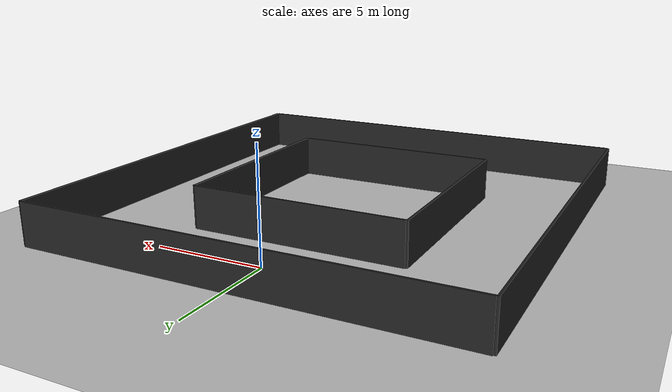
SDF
<sdf version="1.6">
 <world name="default">
  <light name="sun" type="directional">
   <pose>0 0 10 0 -0 0</pose>
   <diffuse>0.8 0.8 0.8 1</diffuse>
   <specular>0.2 0.2 0.2 1</specular>
   <attenuation>
    <range>1000</range>
    <constant>0.9</constant>
    <linear>0.01</linear>
    <quadratic>0.001</quadratic>
   </attenuation>
   <direction>-0.5 0.1 -0.9</direction>
  </light>
  <model name="ground_plane">
   <static>1</static>
   <link name="link">
    <collision name="collision">
     <geometry><plane><normal>0 0 1</normal><size>200 200</size></plane></geometry>
     <surface>
      <contact><collide_bitmask>65535</collide_bitmask></contact>
      <friction><ode><mu>100</mu><mu2>50</mu2></ode></friction>
     </surface>
    </collision>
    <visual name="visual">
     <cast_shadows>0</cast_shadows>
     <geometry><plane><normal>0 0 1</normal><size>200 200</size></plane></geometry>
     <material>
      <script><uri>file://media/materials/scripts/gazebo.material</uri><name>Gazebo/Grey</name></script>
     </material>
    </visual>
   </link>
  </model>
  <gravity>0 0 -9.8</gravity>
  <magnetic_field>6e-06 2.3e-05 -4.2e-05</magnetic_field>
  <atmosphere type="adiabatic"/>
  <physics name="default_physics" default="0" type="ode">
   <max_step_size>0.001</max_step_size>
   <real_time_factor>1</real_time_factor>
   <real_time_update_rate>1000</real_time_update_rate>
  </physics>
  <scene><ambient>0.4 0.4 0.4 1</ambient><background>0.7 0.7 0.7 1</background><shadows>1</shadows></scene>
  <spherical_coordinates>
   <surface_model>EARTH_WGS84</surface_model>
   <latitude_deg>0</latitude_deg>
   <longitude_deg>0</longitude_deg>
   <elevation>0</elevation>
   <heading_deg>0</heading_deg>
  </spherical_coordinates>
  <model name="wall_1">
   <static>1</static>
   <pose>0 -2.5 1 0 0 0</pose>
   <link name="link">
    <collision name="collision"><geometry><box><size>10 0.1 2</size></box></geometry></collision>
    <visual name="visual">
     <geometry><box><size>10 0.1 2</size></box></geometry>
     <material>
      <script><name>Gazebo/Black</name><uri>file://media/materials/scripts/gazebo.material</uri></script>
     </material>
    </visual>
   </link>
  </model>
  <model name="wall_2">
   <static>1</static>
   <pose>0 2.5 1 0 0 0</pose>
   <link name="link">
    <collision name="collision"><geometry><box><size>20 0.1 2</size></box></geometry></collision>
    <visual name="visual">
     <geometry><box><size>20 0.1 2</size></box></geometry>
     <material>
      <script><name>Gazebo/Black</name><uri>file://media/materials/scripts/gazebo.material</uri></script>
     </material>
    </visual>
   </link>
  </model>
  <model name="wall_3">
   <static>1</static>
   <pose>-5.05 -7.5 1 0 0 1.57079632679</pose>
   <link name="link">
    <collision name="collision"><geometry><box><size>10 0.1 2</size></box></geometry></collision>
    <visual name="visual">
     <geometry><box><size>10 0.1 2</size></box></geometry>
     <material>
      <script><name>Gazebo/Black</name><uri>file://media/materials/scripts/gazebo.material</uri></script>
     </material>
    </visual>
   </link>
  </model>
  <model name="wall_4">
   <static>1</static>
   <pose>-10.05 -7.5 1 0 0 1.57079632679</pose>
   <link name="link">
    <collision name="collision"><geometry><box><size>20 0.1 2</size></box></geometry></collision>
    <visual name="visual">
     <geometry><box><size>20 0.1 2</size></box></geometry>
     <material>
      <script><name>Gazebo/Black</name><uri>file://media/materials/scripts/gazebo.material</uri></script>
     </material>
    </visual>
   </link>
  </model>
  <model name="wall_5">
   <static>1</static>
   <pose>0 -12.5 1 0 0 0</pose>
   <link name="link">
    <collision name="collision"><geometry><box><size>10 0.1 2</size></box></geometry></collision>
    <visual name="visual">
     <geometry><box><size>10 0.1 2</size></box></geometry>
     <material>
      <script><name>Gazebo/Black</name><uri>file://media/materials/scripts/gazebo.material</uri></script>
     </material>
    </visual>
   </link>
  </model>
  <model name="wall_6">
   <static>1</static>
   <pose>0 -17.5 1 0 0 0</pose>
   <link name="link">
    <collision name="collision"><geometry><box><size>20 0.1 2</size></box></geometry></collision>
    <visual name="visual">
     <geometry><box><size>20 0.1 2</size></box></geometry>
     <material>
      <script><name>Gazebo/Black</name><uri>file://media/materials/scripts/gazebo.material</uri></script>
     </material>
    </visual>
   </link>
  </model>
  <model name="wall_7">
   <static>1</static>
   <pose>5.05 -7.5 1 0 0 1.57079632679</pose>
   <link name="link">
    <collision name="collision"><geometry><box><size>10 0.1 2</size></box></geometry></collision>
    <visual name="visual">
     <geometry><box><size>10 0.1 2</size></box></geometry>
     <material>
      <script><name>Gazebo/Black</name><uri>file://media/materials/scripts/gazebo.material</uri></script>
     </material>
    </visual>
   </link>
  </model>
  <model name="wall_8">
   <static>1</static>
   <pose>10.05 -7.5 1 0 0 1.57079632679</pose>
   <link name="link">
    <collision name="collision"><geometry><box><size>20 0.1 2</size></box></geometry></collision>
    <visual name="visual">
     <geometry><box><size>20 0.1 2</size></box></geometry>
     <material>
      <script><name>Gazebo/Black</name><uri>file://media/materials/scripts/gazebo.material</uri></script>
     </material>
    </visual>
   </link>
  </model>
 </world>
</sdf>
